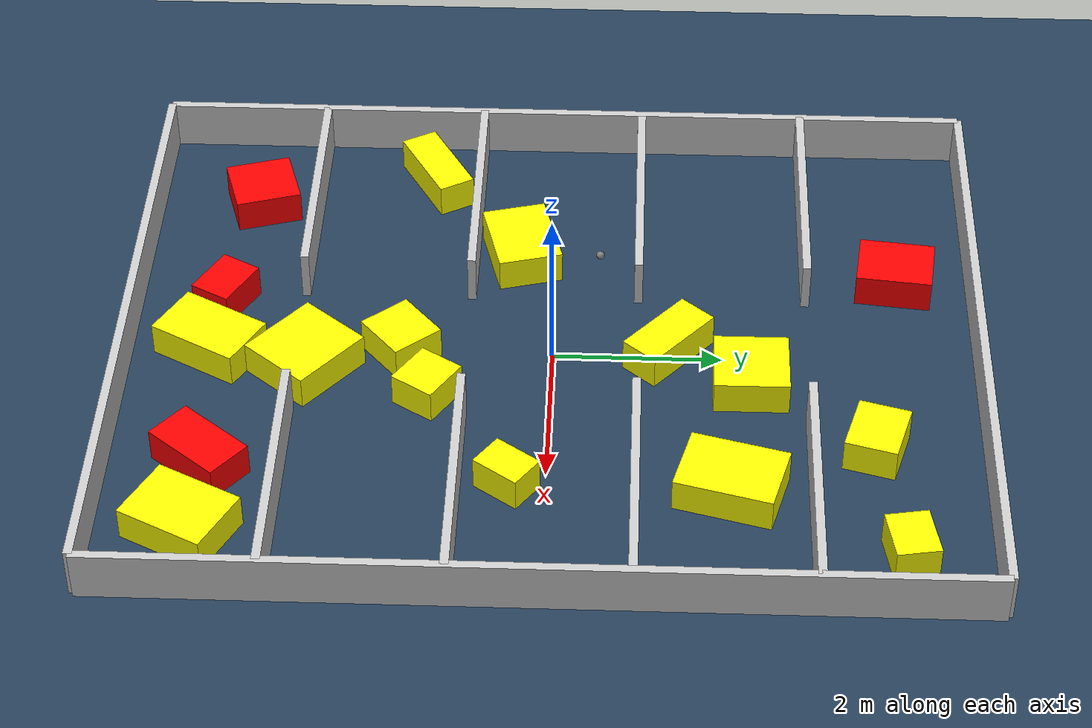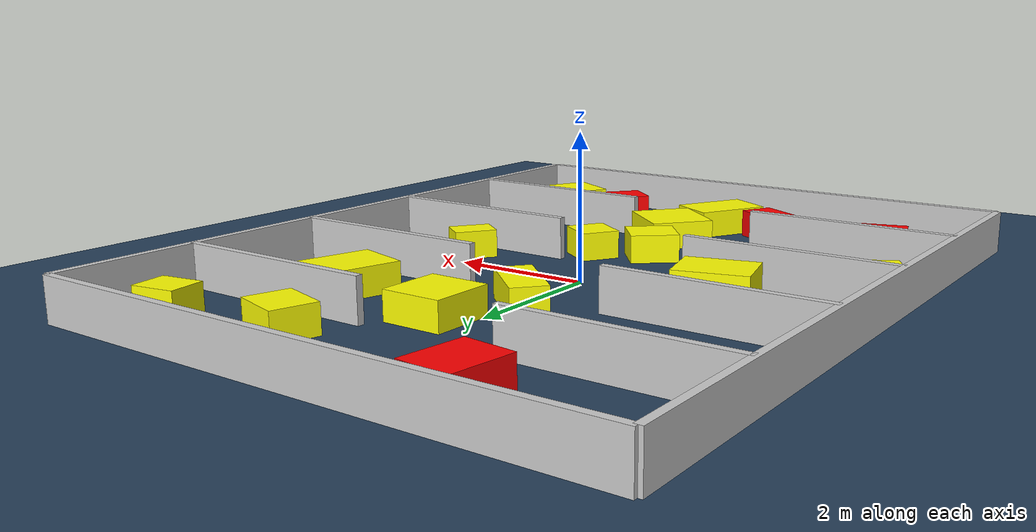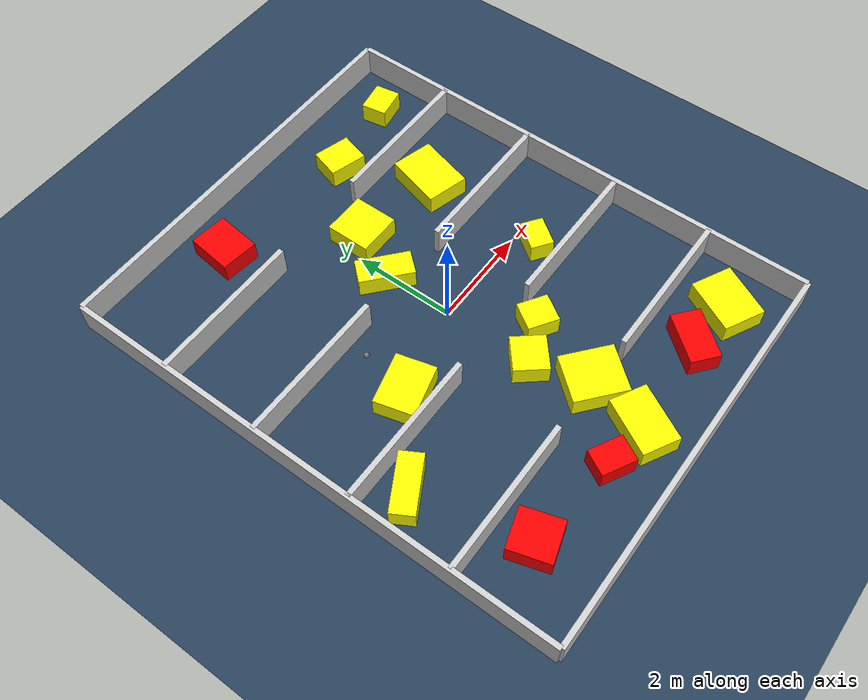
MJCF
<?xml version="1.0" ?>
<mujoco model="generated_environment">
  <option timestep="0.01" integrator="RK4" cone="elliptic"/>
  <default>
    <geom density="1"/>
  </default>
  <asset>
    <texture builtin="gradient" height="3072" rgb1="0.3 0.5 0.7" rgb2="0 0 0" type="skybox" width="512"/>
    <texture builtin="checker" height="300" mark="edge" markrgb="0.8 0.8 0.8" name="groundplane" rgb1="0.2 0.3 0.4" rgb2="0.1 0.2 0.3" type="2d" width="300"/>
    <material name="groundplane" reflectance="0.2" texrepeat="5 5" texture="groundplane" texuniform="true"/>
    <material name="robot" rgba="0.0 1.0 0.0 1"/>
  </asset>
  <worldbody>
    <light dir="0 0 -1" directional="true" pos="0 0 1.5"/>
    <geom condim="4" friction="1.0 0.005 0.001" material="groundplane" name="floor" size="0 0 0.05" type="plane"/>
    <body name="walls">
      <geom name="wall_1" condim="4" pos="-4.0 0.0 0.3" rgba="0.800000011920929 0.800000011920929 0.800000011920929 1.0" size="0.05 5.0 0.3" type="box"/>
      <geom name="wall_2" condim="4" pos="4.0 0.0 0.3" rgba="0.800000011920929 0.800000011920929 0.800000011920929 1.0" size="0.05 5.0 0.3" type="box"/>
      <geom name="wall_3" condim="4" pos="0.0 -5.0 0.3" rgba="0.800000011920929 0.800000011920929 0.800000011920929 1.0" size="4.0 0.05 0.3" type="box"/>
      <geom name="wall_4" condim="4" pos="0.0 5.0 0.3" rgba="0.800000011920929 0.800000011920929 0.800000011920929 1.0" size="4.0 0.05 0.3" type="box"/>
      <geom name="wall_5" condim="4" pos="-2.5 -3.0 0.3" rgba="0.800000011920929 0.800000011920929 0.800000011920929 1.0" size="1.5 0.05 0.3" type="box"/>
      <geom name="wall_6" condim="4" pos="2.5 -3.0 0.3" rgba="0.800000011920929 0.800000011920929 0.800000011920929 1.0" size="1.5 0.05 0.3" type="box"/>
      <geom name="wall_7" condim="4" pos="-2.5 -1.0 0.3" rgba="0.800000011920929 0.800000011920929 0.800000011920929 1.0" size="1.5 0.05 0.3" type="box"/>
      <geom name="wall_8" condim="4" pos="2.5 -1.0 0.3" rgba="0.800000011920929 0.800000011920929 0.800000011920929 1.0" size="1.5 0.05 0.3" type="box"/>
      <geom name="wall_9" condim="4" pos="-2.5 1.0 0.3" rgba="0.800000011920929 0.800000011920929 0.800000011920929 1.0" size="1.5 0.05 0.3" type="box"/>
      <geom name="wall_10" condim="4" pos="2.5 1.0 0.3" rgba="0.800000011920929 0.800000011920929 0.800000011920929 1.0" size="1.5 0.05 0.3" type="box"/>
      <geom name="wall_11" condim="4" pos="-2.5 3.0 0.3" rgba="0.800000011920929 0.800000011920929 0.800000011920929 1.0" size="1.5 0.05 0.3" type="box"/>
      <geom name="wall_12" condim="4" pos="2.5 3.0 0.3" rgba="0.800000011920929 0.800000011920929 0.800000011920929 1.0" size="1.5 0.05 0.3" type="box"/>
    </body>
    <body name="robot">
      <joint name="joint_x" type="slide" pos="0 0 0" axis="1 0 0"/>
      <joint name="joint_y" type="slide" pos="0 0 0" axis="0 1 0"/>
      <geom name="robot" type="sphere" pos="-1.6436723876458528 0.5315764425866298 0.2" size="0.05" mass="5." friction="1.0 0.005 0.0001" condim="4"/>
      <site name="sensor_ball"/>
    </body>
    <body name="obstacle_1_movable">
      <geom name="obstacle_1_movable" condim="4" pos="-0.02639281850576447 -1.773334755238006 0.2" euler="0 0 310.05855083873337" friction="1.0 0.005 0.001" rgba="1 1 0 1" size="0.3272261420723691 0.34796172795029146 0.2" type="box" mass="0.1"/>
      <joint type="free"/>
    </body>
    <body name="obstacle_2_movable">
      <geom name="obstacle_2_movable" condim="4" pos="-0.07155781450925458 1.3634570007844795 0.2" euler="0 0 48.98289405201992" friction="1.0 0.005 0.001" rgba="1 1 0 1" size="0.24795874328055884 0.5258385410785268 0.2" type="box" mass="0.1"/>
      <joint type="free"/>
    </body>
    <body name="obstacle_3_static">
      <geom name="obstacle_3_static" condim="4" pos="-1.4019536611570418 4.089451145901858 0.2" euler="0 0 353.3981647412539" friction="1.0 0.005 0.001" rgba="1 0 0 1" size="0.36636631900454664 0.45043347171435294 0.2" type="box"/>
    </body>
    <body name="obstacle_4_movable">
      <geom name="obstacle_4_movable" condim="4" pos="3.1601075330270976 4.01594587167134 0.2" euler="0 0 99.85273273710155" friction="1.0 0.005 0.001" rgba="1 1 0 1" size="0.25213937160731753 0.3124233722889471 0.2" type="box" mass="0.1"/>
      <joint type="free"/>
    </body>
    <body name="obstacle_5_static">
      <geom name="obstacle_5_static" condim="4" pos="-0.8388217896457961 -3.940448321059684 0.2" euler="0 0 151.50090301730202" friction="1.0 0.005 0.001" rgba="1 0 0 1" size="0.33644799149901455 0.2527362850914134 0.2" type="box"/>
    </body>
    <body name="obstacle_6_movable">
      <geom name="obstacle_6_movable" condim="4" pos="-1.7895508743608382 -0.4285685746879748 0.2" euler="0 0 104.80389820655056" friction="1.0 0.005 0.001" rgba="1 1 0 1" size="0.38745054654639577 0.5082843957957075 0.2" type="box" mass="0.1"/>
      <joint type="free"/>
    </body>
    <body name="obstacle_7_movable">
      <geom name="obstacle_7_movable" condim="4" pos="0.7618742941415535 -1.418007195284953 0.2" euler="0 0 147.04841982483785" friction="1.0 0.005 0.001" rgba="1 1 0 1" size="0.30203863539367076 0.28106808404253897 0.2" type="box" mass="0.1"/>
      <joint type="free"/>
    </body>
    <body name="obstacle_8_static">
      <geom name="obstacle_8_static" condim="4" pos="1.9810107075569605 -3.894911644319852 0.2" euler="0 0 320.79697430585315" friction="1.0 0.005 0.001" rgba="1 0 0 1" size="0.28703522151587924 0.5037486355273648 0.2" type="box"/>
    </body>
    <body name="obstacle_9_movable">
      <geom name="obstacle_9_movable" condim="4" pos="3.0136827909654604 -3.9690681948831896 0.2" euler="0 0 243.00557765188023" friction="1.0 0.005 0.001" rgba="1 1 0 1" size="0.5364047135297395 0.4144141019918335 0.2" type="box" mass="0.1"/>
      <joint type="free"/>
    </body>
    <body name="obstacle_10_movable">
      <geom name="obstacle_10_movable" condim="4" pos="0.2886107403722171 -2.8766023726714884 0.2" euler="0 0 320.2051281494832" friction="1.0 0.005 0.001" rgba="1 1 0 1" size="0.5149426597824016 0.46703014385376235 0.2" type="box" mass="0.1"/>
      <joint type="free"/>
    </body>
    <body name="obstacle_11_movable">
      <geom name="obstacle_11_movable" condim="4" pos="0.039345568639504336 -4.0255086785628045 0.2" euler="0 0 151.32111621981107" friction="1.0 0.005 0.001" rgba="1 1 0 1" size="0.3644148599534301 0.5638439216990507 0.2" type="box" mass="0.1"/>
      <joint type="free"/>
    </body>
    <body name="obstacle_12_movable">
      <geom name="obstacle_12_movable" condim="4" pos="2.224647621747854 2.0746275084139443 0.2" euler="0 0 74.85647472432156" friction="1.0 0.005 0.001" rgba="1 1 0 1" size="0.574110735638256 0.42032863458946823 0.2" type="box" mass="0.1"/>
      <joint type="free"/>
    </body>
    <body name="obstacle_13_movable">
      <geom name="obstacle_13_movable" condim="4" pos="-3.2039583096951105 -1.5544400227111703 0.2" euler="0 0 299.39218350996146" friction="1.0 0.005 0.001" rgba="1 1 0 1" size="0.22565058418729228 0.5565145476018019 0.2" type="box" mass="0.1"/>
      <joint type="free"/>
    </body>
    <body name="obstacle_14_static">
      <geom name="obstacle_14_static" condim="4" pos="-2.7025588654463575 -3.7002356978917996 0.2" euler="0 0 106.93065530597772" friction="1.0 0.005 0.001" rgba="1 0 0 1" size="0.39711327698372456 0.3887696773879145 0.2" type="box"/>
    </body>
    <body name="obstacle_15_movable">
      <geom name="obstacle_15_movable" condim="4" pos="1.5086475252738332 3.7280344515435946 0.2" euler="0 0 73.93886613220161" friction="1.0 0.005 0.001" rgba="1 1 0 1" size="0.3060798239453975 0.36975422156115034 0.2" type="box" mass="0.1"/>
      <joint type="free"/>
    </body>
    <body name="obstacle_16_movable">
      <geom name="obstacle_16_movable" condim="4" pos="2.2033816692673716 -0.4288120735011498 0.2" euler="0 0 144.35368202043722" friction="1.0 0.005 0.001" rgba="1 1 0 1" size="0.22349049982846025 0.302991749796372 0.2" type="box" mass="0.1"/>
      <joint type="free"/>
    </body>
    <body name="obstacle_17_movable">
      <geom name="obstacle_17_movable" condim="4" pos="0.4523449819433778 2.323305811078006 0.2" euler="0 0 270.08140018639625" friction="1.0 0.005 0.001" rgba="1 1 0 1" size="0.43826183667785246 0.43065736068985305 0.2" type="box" mass="0.1"/>
      <joint type="free"/>
    </body>
  </worldbody>
  <actuator>
    <motor name="actuator_x" joint="joint_x" gear="1" ctrlrange="-1 1"/>
    <motor name="actuator_y" joint="joint_y" gear="1" ctrlrange="-1 1"/>
  </actuator>
</mujoco>
